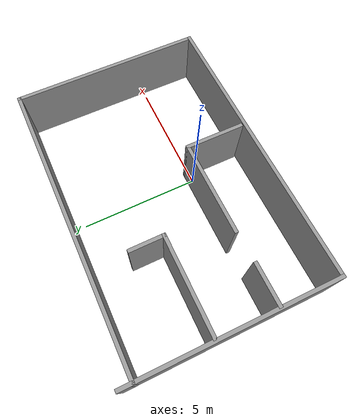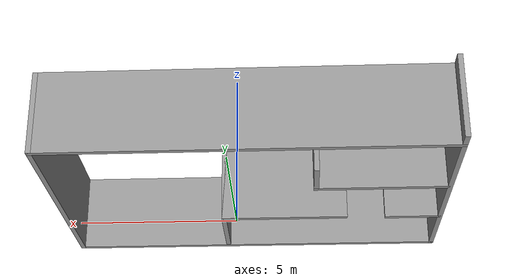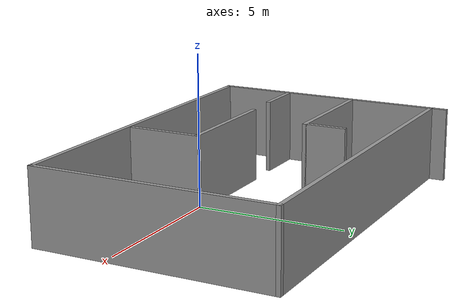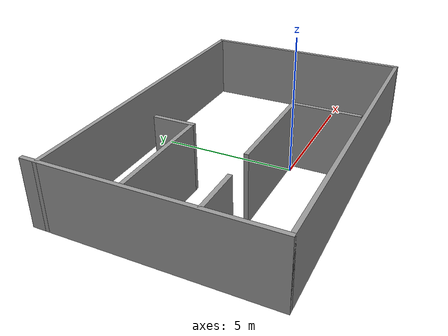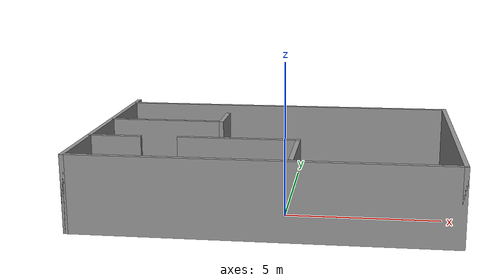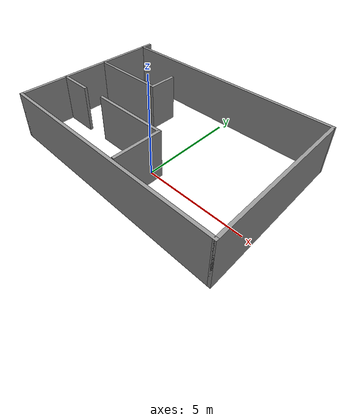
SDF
<?xml version='1.0'?>
<sdf version='1.7'>
  <model name='apartment'>
    <pose>-0.523043 1.7879 0 0 -0 0</pose>
    <link name='Wall_10'>
      <collision name='Wall_10_Collision'>
        <geometry>
          <box>
            <size>1.5 0.15 2.5</size>
          </box>
        </geometry>
        <pose>0 0 1.25 0 -0 0</pose>
      </collision>
      <visual name='Wall_10_Visual'>
        <pose>0 0 1.25 0 -0 0</pose>
        <geometry>
          <box>
            <size>1.5 0.15 2.5</size>
          </box>
        </geometry>
        <material>
          <script>
            <uri>file://media/materials/scripts/gazebo.material</uri>
            <name>Gazebo/Grey</name>
          </script>
          <ambient>1 1 1 1</ambient>
        </material>
        <meta>
          <layer>0</layer>
        </meta>
      </visual>
      <pose>-1.98323 1.42389 0 0 -0 1.5708</pose>
    </link>
    <link name='Wall_12'>
      <collision name='Wall_12_Collision'>
        <geometry>
          <box>
            <size>1.75 0.15 2.5</size>
          </box>
        </geometry>
        <pose>0 0 1.25 0 -0 0</pose>
      </collision>
      <visual name='Wall_12_Visual'>
        <pose>0 0 1.25 0 -0 0</pose>
        <geometry>
          <box>
            <size>1.75 0.15 2.5</size>
          </box>
        </geometry>
        <material>
          <script>
            <uri>file://media/materials/scripts/gazebo.material</uri>
            <name>Gazebo/Grey</name>
          </script>
          <ambient>1 1 1 1</ambient>
        </material>
        <meta>
          <layer>0</layer>
        </meta>
      </visual>
      <pose>-5.06382 -1.69832 0 0 -0 0</pose>
    </link>
    <link name='Wall_14'>
      <collision name='Wall_14_Collision'>
        <geometry>
          <box>
            <size>4 0.15 2.5</size>
          </box>
        </geometry>
        <pose>0 0 1.25 0 -0 0</pose>
      </collision>
      <visual name='Wall_14_Visual'>
        <pose>0 0 1.25 0 -0 0</pose>
        <geometry>
          <box>
            <size>4 0.15 2.5</size>
          </box>
        </geometry>
        <material>
          <script>
            <uri>file://media/materials/scripts/gazebo.material</uri>
            <name>Gazebo/Grey</name>
          </script>
          <ambient>1 1 1 1</ambient>
        </material>
        <meta>
          <layer>0</layer>
        </meta>
      </visual>
      <pose>-1.00216 -1.63714 0 0 -0 0</pose>
    </link>
    <link name='Wall_17'>
      <collision name='Wall_17_Collision'>
        <geometry>
          <box>
            <size>2.5 0.15 2.5</size>
          </box>
        </geometry>
        <pose>0 0 1.25 0 -0 0</pose>
      </collision>
      <visual name='Wall_17_Visual'>
        <pose>0 0 1.25 0 -0 0</pose>
        <geometry>
          <box>
            <size>2.5 0.15 2.5</size>
          </box>
        </geometry>
        <material>
          <script>
            <uri>file://media/materials/scripts/gazebo.material</uri>
            <name>Gazebo/Grey</name>
          </script>
          <ambient>1 1 1 1</ambient>
        </material>
        <meta>
          <layer>0</layer>
        </meta>
      </visual>
      <pose>0.922843 -2.81214 0 0 -0 -1.5708</pose>
    </link>
    <link name='Wall_4'>
      <collision name='Wall_4_Collision'>
        <geometry>
          <box>
            <size>8.5 0.15 2.5</size>
          </box>
        </geometry>
        <pose>0 0 1.25 0 -0 0</pose>
      </collision>
      <visual name='Wall_4_Visual'>
        <pose>0 0 1.25 0 -0 0</pose>
        <geometry>
          <box>
            <size>8.5 0.15 2.5</size>
          </box>
        </geometry>
        <material>
          <script>
            <uri>file://media/materials/scripts/gazebo.material</uri>
            <name>Gazebo/Grey</name>
          </script>
          <ambient>1 1 1 1</ambient>
        </material>
        <meta>
          <layer>0</layer>
        </meta>
      </visual>
      <pose>-5.925 0 0 0 -0 -1.5708</pose>
    </link>
    <link name='Wall_5'>
      <collision name='Wall_5_Collision'>
        <geometry>
          <box>
            <size>12 0.15 2.5</size>
          </box>
        </geometry>
        <pose>0 0 1.25 0 -0 0</pose>
      </collision>
      <visual name='Wall_5_Visual'>
        <pose>0 0 1.25 0 -0 0</pose>
        <geometry>
          <box>
            <size>12 0.15 2.5</size>
          </box>
        </geometry>
        <material>
          <script>
            <uri>file://media/materials/scripts/gazebo.material</uri>
            <name>Gazebo/Grey</name>
          </script>
          <ambient>1 1 1 1</ambient>
        </material>
        <meta>
          <layer>0</layer>
        </meta>
      </visual>
      <pose>0 -4.175 0 0 -0 0</pose>
    </link>
    <link name='Wall_6'>
      <collision name='Wall_6_Collision'>
        <geometry>
          <box>
            <size>8 0.15 2.5</size>
          </box>
        </geometry>
        <pose>0 0 1.25 0 -0 0</pose>
      </collision>
      <visual name='Wall_6_Visual'>
        <pose>0 0 1.25 0 -0 0</pose>
        <geometry>
          <box>
            <size>8 0.15 2.5</size>
          </box>
        </geometry>
        <material>
          <script>
            <uri>file://media/materials/scripts/gazebo.material</uri>
            <name>Gazebo/Grey</name>
          </script>
          <ambient>1 1 1 1</ambient>
        </material>
        <meta>
          <layer>0</layer>
        </meta>
      </visual>
      <pose>5.925 -0.25 0 0 -0 1.5708</pose>
    </link>
    <link name='Wall_7'>
      <collision name='Wall_7_Collision'>
        <geometry>
          <box>
            <size>12 0.15 2.5</size>
          </box>
        </geometry>
        <pose>0 0 1.25 0 -0 0</pose>
      </collision>
      <visual name='Wall_7_Visual'>
        <pose>0 0 1.25 0 -0 0</pose>
        <geometry>
          <box>
            <size>12 0.15 2.5</size>
          </box>
        </geometry>
        <material>
          <script>
            <uri>file://media/materials/scripts/gazebo.material</uri>
            <name>Gazebo/Grey</name>
          </script>
          <ambient>1 1 1 1</ambient>
        </material>
        <meta>
          <layer>0</layer>
        </meta>
      </visual>
      <pose>0 3.675 0 0 -0 3.14159</pose>
    </link>
    <link name='Wall_9'>
      <collision name='Wall_9_Collision'>
        <geometry>
          <box>
            <size>4 0.15 2.5</size>
          </box>
        </geometry>
        <pose>0 0 1.25 0 -0 0</pose>
      </collision>
      <visual name='Wall_9_Visual'>
        <pose>0 0 1.25 0 -0 0</pose>
        <geometry>
          <box>
            <size>4 0.15 2.5</size>
          </box>
        </geometry>
        <material>
          <script>
            <uri>file://media/materials/scripts/gazebo.material</uri>
            <name>Gazebo/Grey</name>
          </script>
          <ambient>1 1 1 1</ambient>
        </material>
        <meta>
          <layer>0</layer>
        </meta>
      </visual>
      <pose>-3.90823 0.748895 0 0 -0 0</pose>
    </link>
    <static>1</static>
  </model>
</sdf>
